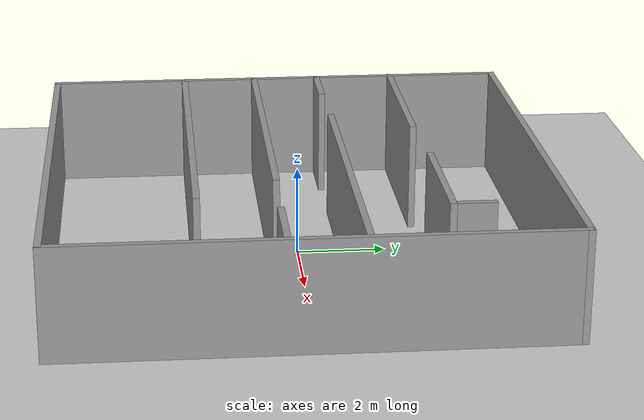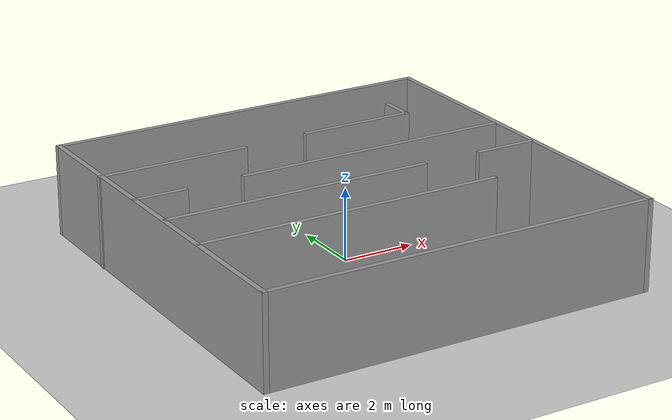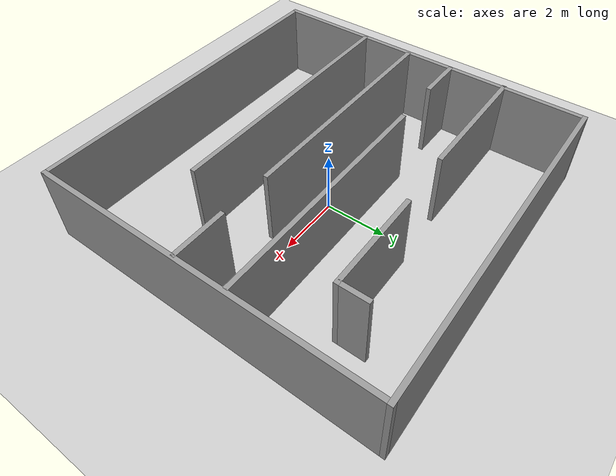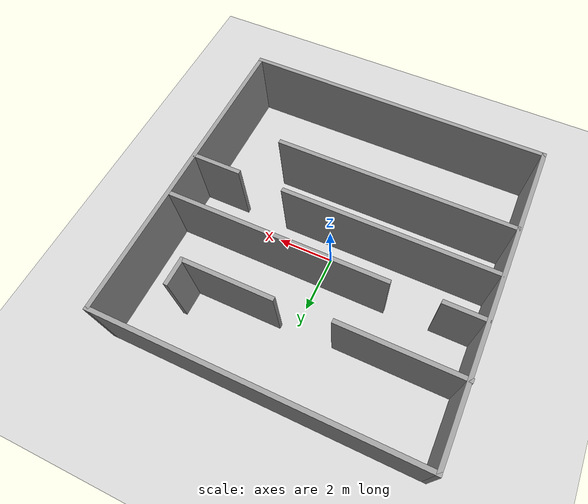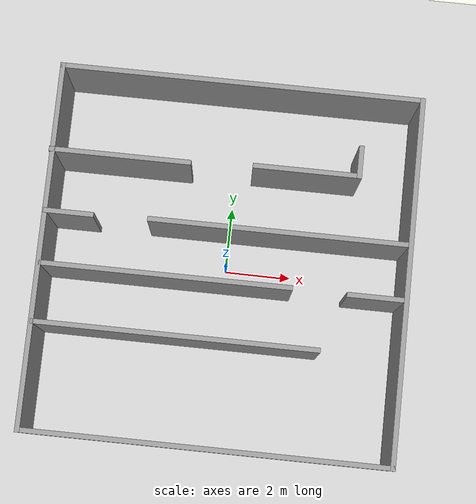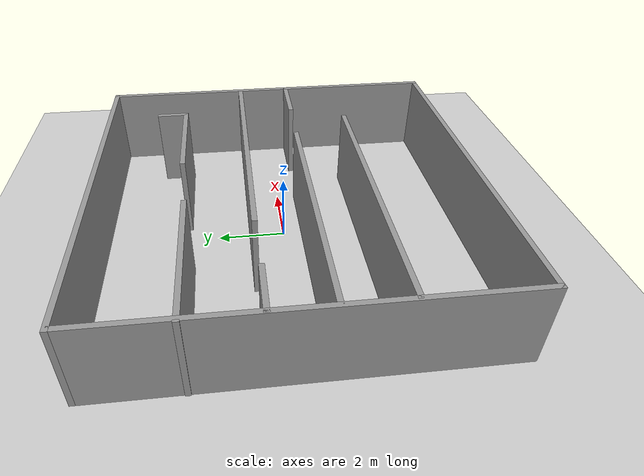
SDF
<sdf version="1.7">
 <world name="default">
  <light name="sun" type="directional">
   <pose>0 0 10 0 -0 0</pose>
   <diffuse>0.8 0.8 0.8 1</diffuse>
   <specular>0.1 0.1 0.1 1</specular>
   <attenuation>
    <range>1000</range>
    <constant>0.9</constant>
    <linear>0.01</linear>
    <quadratic>0.001</quadratic>
   </attenuation>
   <direction>-0.5 0.5 -1</direction>
   <spot><inner_angle>0</inner_angle><outer_angle>0</outer_angle><falloff>0</falloff></spot>
  </light>
  <model name="ground_plane">
   <static>1</static>
   <link name="link">
    <collision name="collision">
     <geometry><plane><normal>0 0 1</normal><size>100 100</size></plane></geometry>
     <surface><friction><ode><mu>100</mu><mu2>50</mu2></ode></friction></surface>
    </collision>
    <visual name="visual">
     <cast_shadows>0</cast_shadows>
     <geometry><plane><normal>0 0 1</normal><size>100 100</size></plane></geometry>
     <material>
      <script><uri>file://media/materials/scripts/gazebo.material</uri><name>Gazebo/Grey</name></script>
     </material>
    </visual>
   </link>
  </model>
  <gravity>0 0 -9.8</gravity>
  <magnetic_field>6e-06 2.3e-05 -4.2e-05</magnetic_field>
  <atmosphere type="adiabatic"/>
  <physics name="default_physics" default="0" type="ode">
   <max_step_size>0.001</max_step_size>
   <real_time_factor>1</real_time_factor>
   <real_time_update_rate>1000</real_time_update_rate>
  </physics>
  <scene><ambient>0.4 0.4 0.4 1</ambient><background>0.7 0.7 0.7 1</background><shadows>1</shadows></scene>
  <spherical_coordinates>
   <surface_model>EARTH_WGS84</surface_model>
   <latitude_deg>0</latitude_deg>
   <longitude_deg>0</longitude_deg>
   <elevation>0</elevation>
   <heading_deg>0</heading_deg>
  </spherical_coordinates>
  <model name="10x10m">
   <pose>-0.052022 -0.057963 0 0 -0 0</pose>
   <link name="Wall_10">
    <collision name="Wall_10_Collision">
     <geometry><box><size>11 0.15 2.5</size></box></geometry>
     <pose>0 0 1.25 0 -0 0</pose>
    </collision>
    <visual name="Wall_10_Visual">
     <pose>0 0 1.25 0 -0 0</pose>
     <geometry><box><size>11 0.15 2.5</size></box></geometry>
     <material>
      <script><uri>file://media/materials/scripts/gazebo.material</uri><name>Gazebo/Grey</name></script>
      <ambient>1 1 1 1</ambient>
     </material>
     <meta><layer>0</layer></meta>
    </visual>
    <pose>0 5.46413 0 0 -0 3.14159</pose>
   </link>
   <link name="Wall_6">
    <collision name="Wall_6_Collision">
     <geometry><box><size>11.0783 0.15 2.5</size></box></geometry>
     <pose>0 0 1.25 0 -0 0</pose>
    </collision>
    <visual name="Wall_6_Visual">
     <pose>0 0 1.25 0 -0 0</pose>
     <geometry><box><size>11.0783 0.15 2.5</size></box></geometry>
     <material>
      <script><uri>file://media/materials/scripts/gazebo.material</uri><name>Gazebo/Grey</name></script>
      <ambient>1 1 1 1</ambient>
     </material>
     <meta><layer>0</layer></meta>
    </visual>
    <pose>-5.425 -0 0 0 -0 -1.5708</pose>
   </link>
   <link name="Wall_8">
    <collision name="Wall_8_Collision">
     <geometry><box><size>11 0.15 2.5</size></box></geometry>
     <pose>0 0 1.25 0 -0 0</pose>
    </collision>
    <visual name="Wall_8_Visual">
     <pose>0 0 1.25 0 -0 0</pose>
     <geometry><box><size>11 0.15 2.5</size></box></geometry>
     <material>
      <script><uri>file://media/materials/scripts/gazebo.material</uri><name>Gazebo/Grey</name></script>
      <ambient>1 1 1 1</ambient>
     </material>
     <meta><layer>0</layer></meta>
    </visual>
    <pose>0 -5.46413 0 0 -0 0</pose>
   </link>
   <link name="Wall_9">
    <collision name="Wall_9_Collision">
     <geometry><box><size>11.0783 0.15 2.5</size></box></geometry>
     <pose>0 0 1.25 0 -0 0</pose>
    </collision>
    <visual name="Wall_9_Visual">
     <pose>0 0 1.25 0 -0 0</pose>
     <geometry><box><size>11.0783 0.15 2.5</size></box></geometry>
     <material>
      <script><uri>file://media/materials/scripts/gazebo.material</uri><name>Gazebo/Grey</name></script>
      <ambient>1 1 1 1</ambient>
     </material>
     <meta><layer>0</layer></meta>
    </visual>
    <pose>5.425 -0 0 0 -0 1.5708</pose>
   </link>
   <static>1</static>
  </model>
  <model name="TD2">
   <pose>-0.104797 0.702062 0 0 -0 0</pose>
   <link name="Wall_12">
    <collision name="Wall_12_Collision">
     <geometry><box><size>8.5 0.15 2.5</size></box></geometry>
     <pose>0 0 1.25 0 -0 0</pose>
    </collision>
    <visual name="Wall_12_Visual">
     <pose>0 0 1.25 0 -0 0</pose>
     <geometry><box><size>8.5 0.15 2.5</size></box></geometry>
     <material>
      <script><uri>file://media/materials/scripts/gazebo.material</uri><name>Gazebo/Grey</name></script>
      <ambient>1 1 1 1</ambient>
     </material>
     <meta><layer>0</layer></meta>
    </visual>
    <pose>-1.14307 -3.06354 0 0 -0 0</pose>
   </link>
   <link name="Wall_14">
    <collision name="Wall_14_Collision">
     <geometry><box><size>7.5 0.15 2.5</size></box></geometry>
     <pose>0 0 1.25 0 -0 0</pose>
    </collision>
    <visual name="Wall_14_Visual">
     <pose>0 0 1.25 0 -0 0</pose>
     <geometry><box><size>7.5 0.15 2.5</size></box></geometry>
     <material>
      <script><uri>file://media/materials/scripts/gazebo.material</uri><name>Gazebo/Grey</name></script>
      <ambient>1 1 1 1</ambient>
     </material>
     <meta><layer>0</layer></meta>
    </visual>
    <pose>-1.61665 -1.32428 0 0 -0 0</pose>
   </link>
   <link name="Wall_16">
    <collision name="Wall_16_Collision">
     <geometry><box><size>1.75 0.15 2.5</size></box></geometry>
     <pose>0 0 1.25 0 -0 0</pose>
    </collision>
    <visual name="Wall_16_Visual">
     <pose>0 0 1.25 0 -0 0</pose>
     <geometry><box><size>1.75 0.15 2.5</size></box></geometry>
     <material>
      <script><uri>file://media/materials/scripts/gazebo.material</uri><name>Gazebo/Grey</name></script>
      <ambient>1 1 1 1</ambient>
     </material>
     <meta><layer>0</layer></meta>
    </visual>
    <pose>4.60163 -1.35088 0 0 -0 3.14159</pose>
   </link>
   <link name="Wall_19">
    <collision name="Wall_19_Collision">
     <geometry><box><size>7.75 0.15 2.5</size></box></geometry>
     <pose>0 0 1.25 0 -0 0</pose>
    </collision>
    <visual name="Wall_19_Visual">
     <pose>0 0 1.25 0 -0 0</pose>
     <geometry><box><size>7.75 0.15 2.5</size></box></geometry>
     <material>
      <script><uri>file://media/materials/scripts/gazebo.material</uri><name>Gazebo/Grey</name></script>
      <ambient>1 1 1 1</ambient>
     </material>
     <meta><layer>0</layer></meta>
    </visual>
    <pose>1.54842 0.298329 0 0 -0 3.14159</pose>
   </link>
   <link name="Wall_22">
    <collision name="Wall_22_Collision">
     <geometry><box><size>1.5 0.15 2.5</size></box></geometry>
     <pose>0 0 1.25 0 -0 0</pose>
    </collision>
    <visual name="Wall_22_Visual">
     <pose>0 0 1.25 0 -0 0</pose>
     <geometry><box><size>1.5 0.15 2.5</size></box></geometry>
     <material>
      <script><uri>file://media/materials/scripts/gazebo.material</uri><name>Gazebo/Grey</name></script>
      <ambient>1 1 1 1</ambient>
     </material>
     <meta><layer>0</layer></meta>
    </visual>
    <pose>-4.66986 0.245128 0 0 -0 0</pose>
   </link>
   <link name="Wall_25">
    <collision name="Wall_25_Collision">
     <geometry><box><size>1 0.15 2.5</size></box></geometry>
     <pose>0 0 1.25 0 -0 0</pose>
    </collision>
    <visual name="Wall_25_Visual">
     <pose>0 0 1.25 0 -0 0</pose>
     <geometry><box><size>1 0.15 2.5</size></box></geometry>
     <material>
      <script><uri>file://media/materials/scripts/gazebo.material</uri><name>Gazebo/Grey</name></script>
      <ambient>1 1 1 1</ambient>
     </material>
     <meta><layer>0</layer></meta>
    </visual>
    <pose>3.78174 2.63854 0 0 -0 1.5708</pose>
   </link>
   <link name="Wall_27">
    <collision name="Wall_27_Collision">
     <geometry><box><size>3.25 0.15 2.5</size></box></geometry>
     <pose>0 0 1.25 0 -0 0</pose>
    </collision>
    <visual name="Wall_27_Visual">
     <pose>0 0 1.25 0 -0 0</pose>
     <geometry><box><size>3.25 0.15 2.5</size></box></geometry>
     <material>
      <script><uri>file://media/materials/scripts/gazebo.material</uri><name>Gazebo/Grey</name></script>
      <ambient>1 1 1 1</ambient>
     </material>
     <meta><layer>0</layer></meta>
    </visual>
    <pose>2.23175 2.21354 0 0 -0 3.14159</pose>
   </link>
   <link name="Wall_29">
    <collision name="Wall_29_Collision">
     <geometry><box><size>4.25 0.15 2.5</size></box></geometry>
     <pose>0 0 1.25 0 -0 0</pose>
    </collision>
    <visual name="Wall_29_Visual">
     <pose>0 0 1.25 0 -0 0</pose>
     <geometry><box><size>4.25 0.15 2.5</size></box></geometry>
     <material>
      <script><uri>file://media/materials/scripts/gazebo.material</uri><name>Gazebo/Grey</name></script>
      <ambient>1 1 1 1</ambient>
     </material>
     <meta><layer>0</layer></meta>
    </visual>
    <pose>-3.35162 2.10714 0 0 -0 3.14159</pose>
   </link>
   <static>1</static>
  </model>
 </world>
</sdf>
